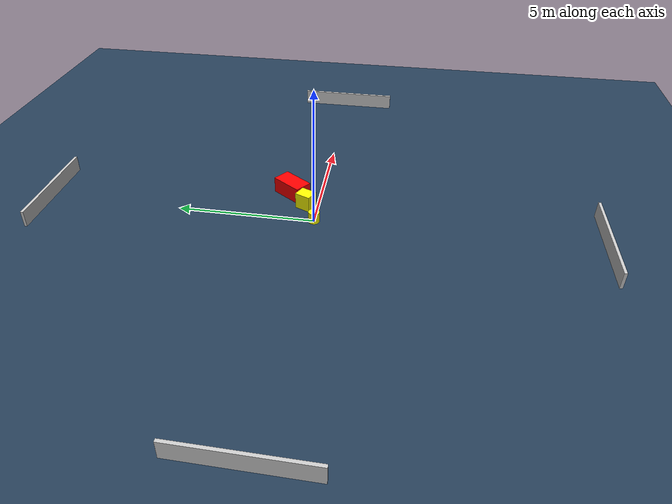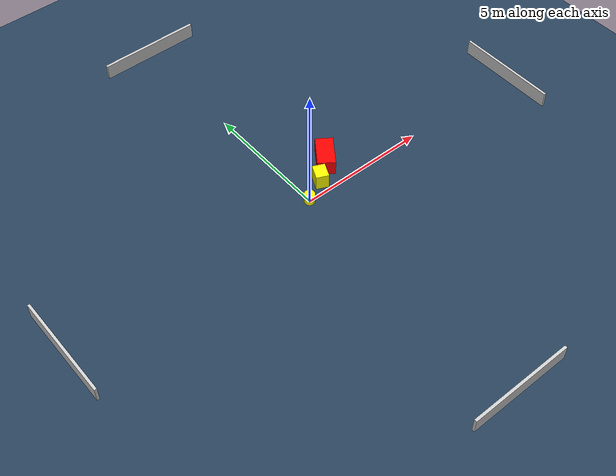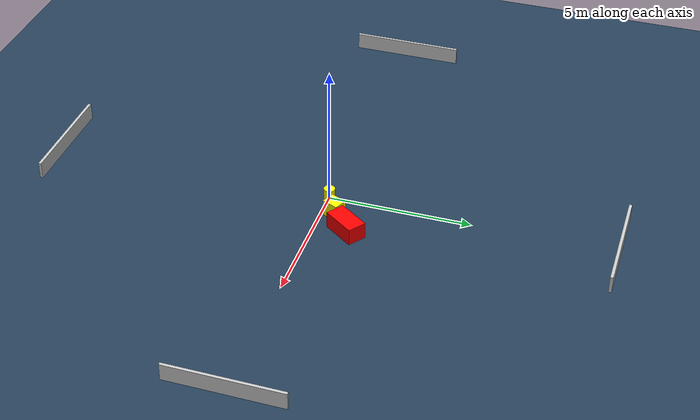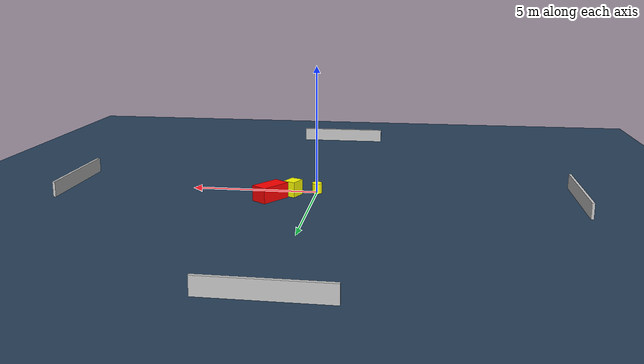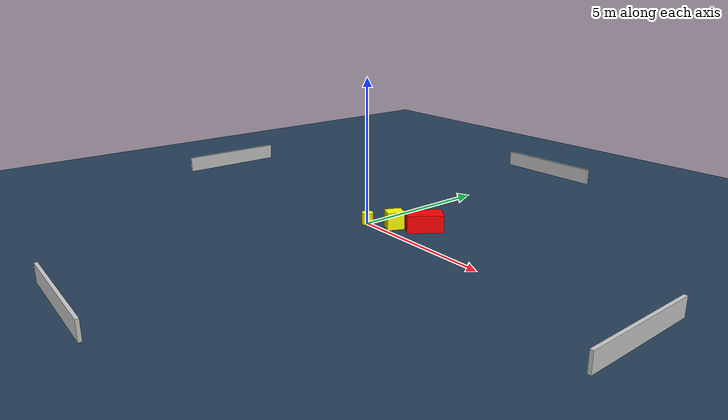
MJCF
<?xml version="1.0" ?>
<mujoco model="generated_environment">
  <option timestep="0.01" integrator="RK4" cone="elliptic"/>
  <default>
    <geom density="1"/>
  </default>
  <asset>
    <texture builtin="gradient" height="3072" name="skybox" rgb1="0.3 0.5 0.7" rgb2="0 0 0" type="skybox" width="512"/>
    <texture builtin="checker" height="300" name="groundplane" rgb1="0.2 0.3 0.4" rgb2="0.1 0.2 0.3" type="2d" width="300"/>
    <material name="groundplane" reflectance="0.2" texrepeat="5 5" texture="groundplane"/>
  </asset>
  <worldbody>
    <light dir="0 0 -1" directional="true" pos="0 0 1.5"/>
    <geom condim="3" friction="0.5 0.005 0.001" material="groundplane" name="floor" pos="0 0 0" size="0 0 0.05" type="plane"/>
    <body name="walls">
      <geom name="wall_1" condim="4" pos="-10.0 0.0 0.3" rgba="0.800000011920929 0.800000011920929 0.800000011920929 1.0" size="0.05 2.0 0.3" type="box"/>
      <geom name="wall_2" condim="4" pos="10.0 0.0 0.3" rgba="0.800000011920929 0.800000011920929 0.800000011920929 1.0" size="0.05 2.0 0.3" type="box"/>
      <geom name="wall_3" condim="4" pos="0.0 -10.0 0.3" rgba="0.800000011920929 0.800000011920929 0.800000011920929 1.0" size="2.0 0.05 0.3" type="box"/>
      <geom name="wall_4" condim="4" pos="0.0 10.0 0.3" rgba="0.800000011920929 0.800000011920929 0.800000011920929 1.0" size="2.0 0.05 0.3" type="box"/>
    </body>
    <body name="robot">
      <joint name="joint_x" type="slide" pos="0 0 0" axis="1 0 0"/>
      <joint name="joint_y" type="slide" pos="0 0 0" axis="0 1 0"/>
      <geom name="robot" type="cylinder" pos="0.0 0.0 0.2" size="0.2 0.2 0.0" mass="5.0" friction="1.0 0.005 0.0001" condim="4" rgba="1.0 1.0 0.0 1.0"/>
    </body>
    <body name="obstacle_1_movable">
      <geom name="obstacle_1_movable" condim="4" pos="0.8785220900274818 0.4532624124804375 0.3" euler="0 0 65.59465735437419" friction="0.0 0.005 0.001" rgba="1.0 1.0 0.0 1.0" size="0.29569360881424905 0.2408976952057635 0.3" type="box" mass="0.1"/>
      <joint type="free"/>
    </body>
    <body name="obstacle_2_static">
      <geom name="obstacle_2_static" condim="4" pos="1.6526537389479667 1.1078258570860622 0.3" euler="0 0 324.42933546366237" friction="0.0 0.005 0.001" rgba="1.0 0.0 0.0 1.0" size="0.3348246173367475 0.6161718491132925 0.3" type="box"/>
    </body>
  </worldbody>
  <actuator>
    <motor name="actuator_x" joint="joint_x" gear="1" ctrlrange="-1 1"/>
    <motor name="actuator_y" joint="joint_y" gear="1" ctrlrange="-1 1"/>
  </actuator>
</mujoco>
